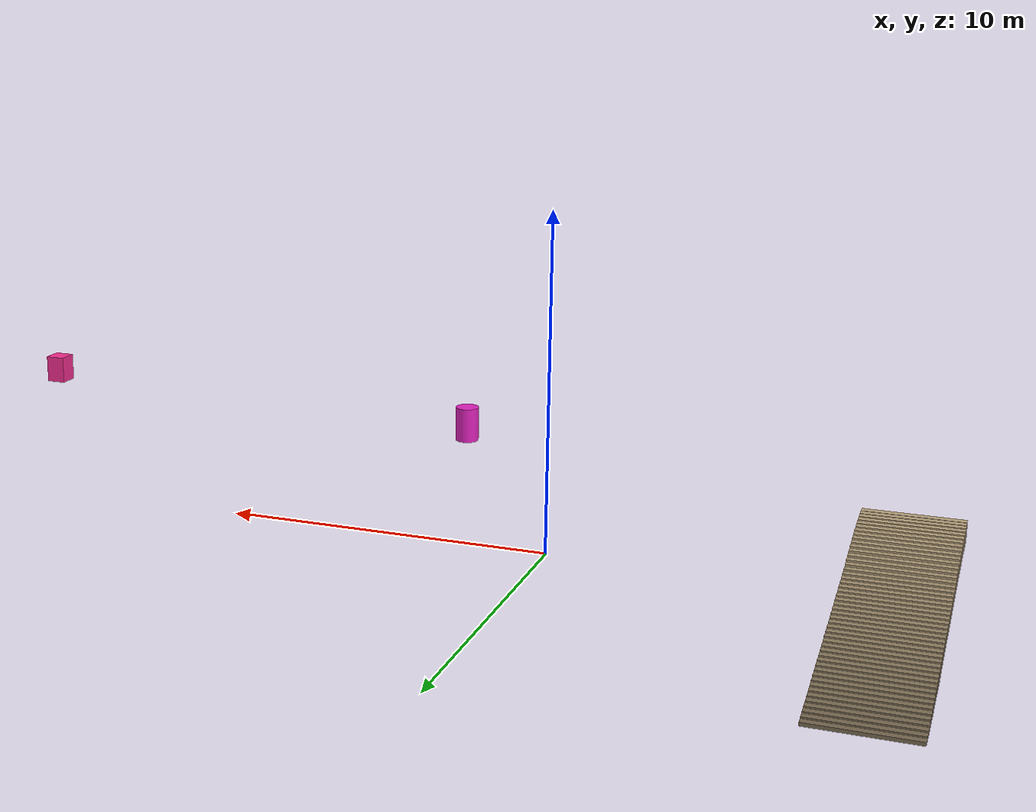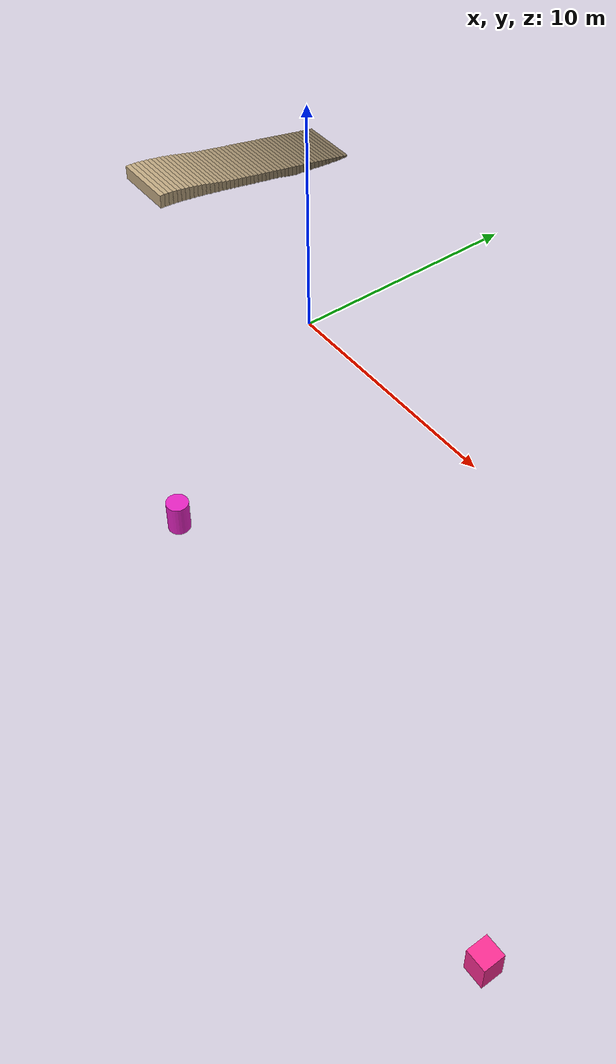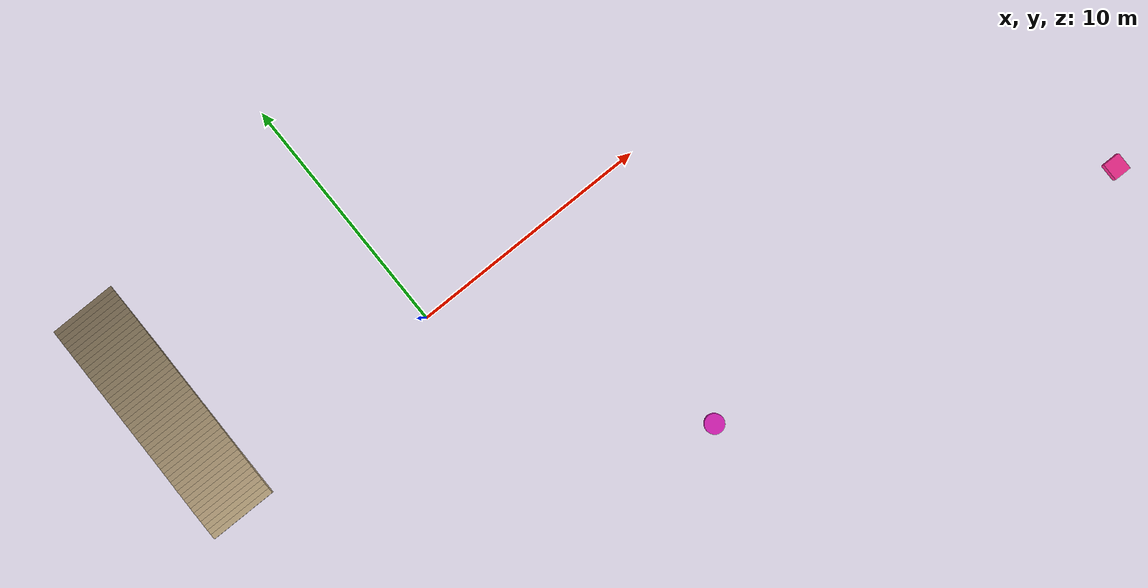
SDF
<sdf version="1.8">
 <world name="semantic_segmentation_world">
  <model name="staircase">
   <static>true</static>
   <link name="staircase_link">
    <collision name="step_01_collision">
     <pose>-10.000000 8.395833 0.044338 0.000000 0.000000 4.712389</pose>
     <geometry><box><size>0.223333 2.800000 0.100049</size></box></geometry>
     <surface><friction><ode><mu>1.2</mu><mu2>1.2</mu2></ode></friction></surface>
    </collision>
    <visual name="step_01_visual">
     <pose>-10.000000 8.395833 0.044338 0.000000 0.000000 4.712389</pose>
     <geometry><box><size>0.223333 2.800000 0.100049</size></box></geometry>
     <material>
      <ambient>0.34559999999999996 0.304128 0.235008 1.0</ambient>
      <diffuse>0.48 0.4224 0.3264 1.0</diffuse>
      <specular>0.04 0.04 0.04 1.0</specular>
     </material>
    </visual>
    <collision name="step_02_collision">
     <pose>-10.000000 8.187500 0.067010 0.000000 0.000000 4.712389</pose>
     <geometry><box><size>0.223333 2.800000 0.135588</size></box></geometry>
     <surface><friction><ode><mu>1.2</mu><mu2>1.2</mu2></ode></friction></surface>
    </collision>
    <visual name="step_02_visual">
     <pose>-10.000000 8.187500 0.067010 0.000000 0.000000 4.712389</pose>
     <geometry><box><size>0.223333 2.800000 0.135588</size></box></geometry>
     <material>
      <ambient>0.34991999999999995 0.30792959999999997 0.23794559999999998 1.0</ambient>
      <diffuse>0.486 0.42768 0.33048 1.0</diffuse>
      <specular>0.04 0.04 0.04 1.0</specular>
     </material>
    </visual>
    <collision name="step_03_collision">
     <pose>-10.000000 7.979167 0.090090 0.000000 0.000000 4.712389</pose>
     <geometry><box><size>0.223333 2.800000 0.170310</size></box></geometry>
     <surface><friction><ode><mu>1.2</mu><mu2>1.2</mu2></ode></friction></surface>
    </collision>
    <visual name="step_03_visual">
     <pose>-10.000000 7.979167 0.090090 0.000000 0.000000 4.712389</pose>
     <geometry><box><size>0.223333 2.800000 0.170310</size></box></geometry>
     <material>
      <ambient>0.35424 0.3117312 0.24088320000000002 1.0</ambient>
      <diffuse>0.492 0.43296 0.33456 1.0</diffuse>
      <specular>0.04 0.04 0.04 1.0</specular>
     </material>
    </visual>
    <collision name="step_04_collision">
     <pose>-10.000000 7.770833 0.115417 0.000000 0.000000 4.712389</pose>
     <geometry><box><size>0.223333 2.800000 0.200539</size></box></geometry>
     <surface><friction><ode><mu>1.2</mu><mu2>1.2</mu2></ode></friction></surface>
    </collision>
    <visual name="step_04_visual">
     <pose>-10.000000 7.770833 0.115417 0.000000 0.000000 4.712389</pose>
     <geometry><box><size>0.223333 2.800000 0.200539</size></box></geometry>
     <material>
      <ambient>0.35856 0.3155328 0.24382079999999998 1.0</ambient>
      <diffuse>0.498 0.43824 0.33864 1.0</diffuse>
      <specular>0.04 0.04 0.04 1.0</specular>
     </material>
    </visual>
    <collision name="step_05_collision">
     <pose>-10.000000 7.562500 0.140743 0.000000 0.000000 4.712389</pose>
     <geometry><box><size>0.223333 2.800000 0.230768</size></box></geometry>
     <surface><friction><ode><mu>1.2</mu><mu2>1.2</mu2></ode></friction></surface>
    </collision>
    <visual name="step_05_visual">
     <pose>-10.000000 7.562500 0.140743 0.000000 0.000000 4.712389</pose>
     <geometry><box><size>0.223333 2.800000 0.230768</size></box></geometry>
     <material>
      <ambient>0.36288 0.3193344 0.24675840000000002 1.0</ambient>
      <diffuse>0.504 0.44352 0.34272 1.0</diffuse>
      <specular>0.04 0.04 0.04 1.0</specular>
     </material>
    </visual>
    <collision name="step_06_collision">
     <pose>-10.000000 7.354167 0.169542 0.000000 0.000000 4.712389</pose>
     <geometry><box><size>0.223333 2.800000 0.254052</size></box></geometry>
     <surface><friction><ode><mu>1.2</mu><mu2>1.2</mu2></ode></friction></surface>
    </collision>
    <visual name="step_06_visual">
     <pose>-10.000000 7.354167 0.169542 0.000000 0.000000 4.712389</pose>
     <geometry><box><size>0.223333 2.800000 0.254052</size></box></geometry>
     <material>
      <ambient>0.36719999999999997 0.32313600000000003 0.24969600000000003 1.0</ambient>
      <diffuse>0.51 0.44880000000000003 0.34680000000000005 1.0</diffuse>
      <specular>0.04 0.04 0.04 1.0</specular>
     </material>
    </visual>
    <collision name="step_07_collision">
     <pose>-10.000000 7.145833 0.196299 0.000000 0.000000 4.712389</pose>
     <geometry><box><size>0.223333 2.800000 0.281422</size></box></geometry>
     <surface><friction><ode><mu>1.2</mu><mu2>1.2</mu2></ode></friction></surface>
    </collision>
    <visual name="step_07_visual">
     <pose>-10.000000 7.145833 0.196299 0.000000 0.000000 4.712389</pose>
     <geometry><box><size>0.223333 2.800000 0.281422</size></box></geometry>
     <material>
      <ambient>0.37152 0.3269376 0.2526336 1.0</ambient>
      <diffuse>0.516 0.45408000000000004 0.35088 1.0</diffuse>
      <specular>0.04 0.04 0.04 1.0</specular>
     </material>
    </visual>
    <collision name="step_08_collision">
     <pose>-10.000000 6.937500 0.225507 0.000000 0.000000 4.712389</pose>
     <geometry><box><size>0.223333 2.800000 0.303889</size></box></geometry>
     <surface><friction><ode><mu>1.2</mu><mu2>1.2</mu2></ode></friction></surface>
    </collision>
    <visual name="step_08_visual">
     <pose>-10.000000 6.937500 0.225507 0.000000 0.000000 4.712389</pose>
     <geometry><box><size>0.223333 2.800000 0.303889</size></box></geometry>
     <material>
      <ambient>0.37584 0.3307392 0.25557120000000005 1.0</ambient>
      <diffuse>0.522 0.45936000000000005 0.35496000000000005 1.0</diffuse>
      <specular>0.04 0.04 0.04 1.0</specular>
     </material>
    </visual>
    <collision name="step_09_collision">
     <pose>-10.000000 6.729167 0.260025 0.000000 0.000000 4.712389</pose>
     <geometry><box><size>0.223333 2.800000 0.315735</size></box></geometry>
     <surface><friction><ode><mu>1.2</mu><mu2>1.2</mu2></ode></friction></surface>
    </collision>
    <visual name="step_09_visual">
     <pose>-10.000000 6.729167 0.260025 0.000000 0.000000 4.712389</pose>
     <geometry><box><size>0.223333 2.800000 0.315735</size></box></geometry>
     <material>
      <ambient>0.38016 0.33454079999999997 0.2585088 1.0</ambient>
      <diffuse>0.528 0.46464 0.35904 1.0</diffuse>
      <specular>0.04 0.04 0.04 1.0</specular>
     </material>
    </visual>
    <collision name="step_10_collision">
     <pose>-10.000000 6.520833 0.288313 0.000000 0.000000 4.712389</pose>
     <geometry><box><size>0.223333 2.800000 0.340041</size></box></geometry>
     <surface><friction><ode><mu>1.2</mu><mu2>1.2</mu2></ode></friction></surface>
    </collision>
    <visual name="step_10_visual">
     <pose>-10.000000 6.520833 0.288313 0.000000 0.000000 4.712389</pose>
     <geometry><box><size>0.223333 2.800000 0.340041</size></box></geometry>
     <material>
      <ambient>0.38448 0.3383424 0.2614464 1.0</ambient>
      <diffuse>0.534 0.46992 0.36312000000000005 1.0</diffuse>
      <specular>0.04 0.04 0.04 1.0</specular>
     </material>
    </visual>
    <collision name="step_11_collision">
     <pose>-10.000000 6.312500 0.318440 0.000000 0.000000 4.712389</pose>
     <geometry><box><size>0.223333 2.800000 0.360670</size></box></geometry>
     <surface><friction><ode><mu>1.2</mu><mu2>1.2</mu2></ode></friction></surface>
    </collision>
    <visual name="step_11_visual">
     <pose>-10.000000 6.312500 0.318440 0.000000 0.000000 4.712389</pose>
     <geometry><box><size>0.223333 2.800000 0.360670</size></box></geometry>
     <material>
      <ambient>0.38880000000000003 0.342144 0.264384 1.0</ambient>
      <diffuse>0.54 0.4752 0.3672 1.0</diffuse>
      <specular>0.04 0.04 0.04 1.0</specular>
     </material>
    </visual>
    <collision name="step_12_collision">
     <pose>-10.000000 6.104167 0.347851 0.000000 0.000000 4.712389</pose>
     <geometry><box><size>0.223333 2.800000 0.382729</size></box></geometry>
     <surface><friction><ode><mu>1.2</mu><mu2>1.2</mu2></ode></friction></surface>
    </collision>
    <visual name="step_12_visual">
     <pose>-10.000000 6.104167 0.347851 0.000000 0.000000 4.712389</pose>
     <geometry><box><size>0.223333 2.800000 0.382729</size></box></geometry>
     <material>
      <ambient>0.39312 0.3459456 0.26732160000000005 1.0</ambient>
      <diffuse>0.546 0.48048 0.37128000000000005 1.0</diffuse>
      <specular>0.04 0.04 0.04 1.0</specular>
     </material>
    </visual>
    <collision name="step_13_collision">
     <pose>-10.000000 5.895833 0.377672 0.000000 0.000000 4.712389</pose>
     <geometry><box><size>0.223333 2.800000 0.403971</size></box></geometry>
     <surface><friction><ode><mu>1.2</mu><mu2>1.2</mu2></ode></friction></surface>
    </collision>
    <visual name="step_13_visual">
     <pose>-10.000000 5.895833 0.377672 0.000000 0.000000 4.712389</pose>
     <geometry><box><size>0.223333 2.800000 0.403971</size></box></geometry>
     <material>
      <ambient>0.39744 0.3497472 0.27025920000000003 1.0</ambient>
      <diffuse>0.552 0.48576 0.3753600000000001 1.0</diffuse>
      <specular>0.04 0.04 0.04 1.0</specular>
     </material>
    </visual>
    <collision name="step_14_collision">
     <pose>-10.000000 5.687500 0.403407 0.000000 0.000000 4.712389</pose>
     <geometry><box><size>0.223333 2.800000 0.433382</size></box></geometry>
     <surface><friction><ode><mu>1.2</mu><mu2>1.2</mu2></ode></friction></surface>
    </collision>
    <visual name="step_14_visual">
     <pose>-10.000000 5.687500 0.403407 0.000000 0.000000 4.712389</pose>
     <geometry><box><size>0.223333 2.800000 0.433382</size></box></geometry>
     <material>
      <ambient>0.40175999999999995 0.3535488 0.27319679999999996 1.0</ambient>
      <diffuse>0.5579999999999999 0.49104 0.37944 1.0</diffuse>
      <specular>0.04 0.04 0.04 1.0</specular>
     </material>
    </visual>
    <collision name="step_15_collision">
     <pose>-10.000000 5.479167 0.439355 0.000000 0.000000 4.712389</pose>
     <geometry><box><size>0.223333 2.800000 0.442369</size></box></geometry>
     <surface><friction><ode><mu>1.2</mu><mu2>1.2</mu2></ode></friction></surface>
    </collision>
    <visual name="step_15_visual">
     <pose>-10.000000 5.479167 0.439355 0.000000 0.000000 4.712389</pose>
     <geometry><box><size>0.223333 2.800000 0.442369</size></box></geometry>
     <material>
      <ambient>0.40607999999999994 0.35735039999999996 0.27613439999999995 1.0</ambient>
      <diffuse>0.564 0.49631999999999993 0.38351999999999997 1.0</diffuse>
      <specular>0.04 0.04 0.04 1.0</specular>
     </material>
    </visual>
    <collision name="step_16_collision">
     <pose>-10.000000 5.270833 0.481225 0.000000 0.000000 4.712389</pose>
     <geometry><box><size>0.223333 2.800000 0.439510</size></box></geometry>
     <surface><friction><ode><mu>1.2</mu><mu2>1.2</mu2></ode></friction></surface>
    </collision>
    <visual name="step_16_visual">
     <pose>-10.000000 5.270833 0.481225 0.000000 0.000000 4.712389</pose>
     <geometry><box><size>0.223333 2.800000 0.439510</size></box></geometry>
     <material>
      <ambient>0.41039999999999993 0.3611519999999999 0.279072 1.0</ambient>
      <diffuse>0.57 0.5015999999999999 0.3876 1.0</diffuse>
      <specular>0.04 0.04 0.04 1.0</specular>
     </material>
    </visual>
    <collision name="step_17_collision">
     <pose>-10.000000 5.062500 0.531266 0.000000 0.000000 4.712389</pose>
     <geometry><box><size>0.223333 2.800000 0.420310</size></box></geometry>
     <surface><friction><ode><mu>1.2</mu><mu2>1.2</mu2></ode></friction></surface>
    </collision>
    <visual name="step_17_visual">
     <pose>-10.000000 5.062500 0.531266 0.000000 0.000000 4.712389</pose>
     <geometry><box><size>0.223333 2.800000 0.420310</size></box></geometry>
     <material>
      <ambient>0.41472 0.3649536 0.28200959999999997 1.0</ambient>
      <diffuse>0.576 0.50688 0.39168 1.0</diffuse>
      <specular>0.04 0.04 0.04 1.0</specular>
     </material>
    </visual>
    <collision name="step_18_collision">
     <pose>-10.000000 4.854167 0.578039 0.000000 0.000000 4.712389</pose>
     <geometry><box><size>0.223333 2.800000 0.407647</size></box></geometry>
     <surface><friction><ode><mu>1.2</mu><mu2>1.2</mu2></ode></friction></surface>
    </collision>
    <visual name="step_18_visual">
     <pose>-10.000000 4.854167 0.578039 0.000000 0.000000 4.712389</pose>
     <geometry><box><size>0.223333 2.800000 0.407647</size></box></geometry>
     <material>
      <ambient>0.41903999999999997 0.36875519999999995 0.2849472 1.0</ambient>
      <diffuse>0.582 0.51216 0.39576 1.0</diffuse>
      <specular>0.04 0.04 0.04 1.0</specular>
     </material>
    </visual>
    <collision name="step_19_collision">
     <pose>-10.000000 4.645833 0.625221 0.000000 0.000000 4.712389</pose>
     <geometry><box><size>0.223333 2.800000 0.394167</size></box></geometry>
     <surface><friction><ode><mu>1.2</mu><mu2>1.2</mu2></ode></friction></surface>
    </collision>
    <visual name="step_19_visual">
     <pose>-10.000000 4.645833 0.625221 0.000000 0.000000 4.712389</pose>
     <geometry><box><size>0.223333 2.800000 0.394167</size></box></geometry>
     <material>
      <ambient>0.42335999999999996 0.3725568 0.2878848 1.0</ambient>
      <diffuse>0.588 0.51744 0.39984000000000003 1.0</diffuse>
      <specular>0.04 0.04 0.04 1.0</specular>
     </material>
    </visual>
    <collision name="step_20_collision">
     <pose>-10.000000 4.437500 0.662190 0.000000 0.000000 4.712389</pose>
     <geometry><box><size>0.223333 2.800000 0.401111</size></box></geometry>
     <surface><friction><ode><mu>1.2</mu><mu2>1.2</mu2></ode></friction></surface>
    </collision>
    <visual name="step_20_visual">
     <pose>-10.000000 4.437500 0.662190 0.000000 0.000000 4.712389</pose>
     <geometry><box><size>0.223333 2.800000 0.401111</size></box></geometry>
     <material>
      <ambient>0.42767999999999995 0.3763584 0.2908224 1.0</ambient>
      <diffuse>0.594 0.52272 0.40392 1.0</diffuse>
      <specular>0.04 0.04 0.04 1.0</specular>
     </material>
    </visual>
    <collision name="step_21_collision">
     <pose>-10.000000 4.229167 0.701201 0.000000 0.000000 4.712389</pose>
     <geometry><box><size>0.223333 2.800000 0.403971</size></box></geometry>
     <surface><friction><ode><mu>1.2</mu><mu2>1.2</mu2></ode></friction></surface>
    </collision>
    <visual name="step_21_visual">
     <pose>-10.000000 4.229167 0.701201 0.000000 0.000000 4.712389</pose>
     <geometry><box><size>0.223333 2.800000 0.403971</size></box></geometry>
     <material>
      <ambient>0.432 0.38016 0.29376 1.0</ambient>
      <diffuse>0.6 0.528 0.40800000000000003 1.0</diffuse>
      <specular>0.04 0.04 0.04 1.0</specular>
     </material>
    </visual>
    <collision name="step_22_collision">
     <pose>-10.000000 4.020833 0.738578 0.000000 0.000000 4.712389</pose>
     <geometry><box><size>0.223333 2.800000 0.410098</size></box></geometry>
     <surface><friction><ode><mu>1.2</mu><mu2>1.2</mu2></ode></friction></surface>
    </collision>
    <visual name="step_22_visual">
     <pose>-10.000000 4.020833 0.738578 0.000000 0.000000 4.712389</pose>
     <geometry><box><size>0.223333 2.800000 0.410098</size></box></geometry>
     <material>
      <ambient>0.43632 0.38396159999999996 0.2966976 1.0</ambient>
      <diffuse>0.606 0.53328 0.41208 1.0</diffuse>
      <specular>0.04 0.04 0.04 1.0</specular>
     </material>
    </visual>
    <collision name="step_23_collision">
     <pose>-10.000000 3.812500 0.779224 0.000000 0.000000 4.712389</pose>
     <geometry><box><size>0.223333 2.800000 0.409690</size></box></geometry>
     <surface><friction><ode><mu>1.2</mu><mu2>1.2</mu2></ode></friction></surface>
    </collision>
    <visual name="step_23_visual">
     <pose>-10.000000 3.812500 0.779224 0.000000 0.000000 4.712389</pose>
     <geometry><box><size>0.223333 2.800000 0.409690</size></box></geometry>
     <material>
      <ambient>0.44064 0.38776320000000003 0.2996352 1.0</ambient>
      <diffuse>0.612 0.53856 0.41616000000000003 1.0</diffuse>
      <specular>0.04 0.04 0.04 1.0</specular>
     </material>
    </visual>
    <collision name="step_24_collision">
     <pose>-10.000000 3.604167 0.819869 0.000000 0.000000 4.712389</pose>
     <geometry><box><size>0.223333 2.800000 0.409281</size></box></geometry>
     <surface><friction><ode><mu>1.2</mu><mu2>1.2</mu2></ode></friction></surface>
    </collision>
    <visual name="step_24_visual">
     <pose>-10.000000 3.604167 0.819869 0.000000 0.000000 4.712389</pose>
     <geometry><box><size>0.223333 2.800000 0.409281</size></box></geometry>
     <material>
      <ambient>0.44495999999999997 0.3915648 0.3025728 1.0</ambient>
      <diffuse>0.618 0.54384 0.42024 1.0</diffuse>
      <specular>0.04 0.04 0.04 1.0</specular>
     </material>
    </visual>
    <collision name="step_25_collision">
     <pose>-10.000000 3.395833 0.858064 0.000000 0.000000 4.712389</pose>
     <geometry><box><size>0.223333 2.800000 0.413775</size></box></geometry>
     <surface><friction><ode><mu>1.2</mu><mu2>1.2</mu2></ode></friction></surface>
    </collision>
    <visual name="step_25_visual">
     <pose>-10.000000 3.395833 0.858064 0.000000 0.000000 4.712389</pose>
     <geometry><box><size>0.223333 2.800000 0.413775</size></box></geometry>
     <material>
      <ambient>0.44927999999999996 0.3953664 0.3055104 1.0</ambient>
      <diffuse>0.624 0.54912 0.42432000000000003 1.0</diffuse>
      <specular>0.04 0.04 0.04 1.0</specular>
     </material>
    </visual>
    <collision name="step_26_collision">
     <pose>-10.000000 3.187500 0.896258 0.000000 0.000000 4.712389</pose>
     <geometry><box><size>0.223333 2.800000 0.418268</size></box></geometry>
     <surface><friction><ode><mu>1.2</mu><mu2>1.2</mu2></ode></friction></surface>
    </collision>
    <visual name="step_26_visual">
     <pose>-10.000000 3.187500 0.896258 0.000000 0.000000 4.712389</pose>
     <geometry><box><size>0.223333 2.800000 0.418268</size></box></geometry>
     <material>
      <ambient>0.4536 0.39916799999999997 0.30844800000000006 1.0</ambient>
      <diffuse>0.63 0.5544 0.42840000000000006 1.0</diffuse>
      <specular>0.04 0.04 0.04 1.0</specular>
     </material>
    </visual>
    <collision name="step_27_collision">
     <pose>-10.000000 2.979167 0.936904 0.000000 0.000000 4.712389</pose>
     <geometry><box><size>0.223333 2.800000 0.417859</size></box></geometry>
     <surface><friction><ode><mu>1.2</mu><mu2>1.2</mu2></ode></friction></surface>
    </collision>
    <visual name="step_27_visual">
     <pose>-10.000000 2.979167 0.936904 0.000000 0.000000 4.712389</pose>
     <geometry><box><size>0.223333 2.800000 0.417859</size></box></geometry>
     <material>
      <ambient>0.45792 0.40296960000000004 0.3113856 1.0</ambient>
      <diffuse>0.636 0.5596800000000001 0.43248000000000003 1.0</diffuse>
      <specular>0.04 0.04 0.04 1.0</specular>
     </material>
    </visual>
    <collision name="step_28_collision">
     <pose>-10.000000 2.770833 0.977549 0.000000 0.000000 4.712389</pose>
     <geometry><box><size>0.223333 2.800000 0.417451</size></box></geometry>
     <surface><friction><ode><mu>1.2</mu><mu2>1.2</mu2></ode></friction></surface>
    </collision>
    <visual name="step_28_visual">
     <pose>-10.000000 2.770833 0.977549 0.000000 0.000000 4.712389</pose>
     <geometry><box><size>0.223333 2.800000 0.417451</size></box></geometry>
     <material>
      <ambient>0.46224 0.4067712 0.3143232 1.0</ambient>
      <diffuse>0.642 0.56496 0.43656000000000006 1.0</diffuse>
      <specular>0.04 0.04 0.04 1.0</specular>
     </material>
    </visual>
    <collision name="step_29_collision">
     <pose>-10.000000 2.562500 1.018194 0.000000 0.000000 4.712389</pose>
     <geometry><box><size>0.223333 2.800000 0.417042</size></box></geometry>
     <surface><friction><ode><mu>1.2</mu><mu2>1.2</mu2></ode></friction></surface>
    </collision>
    <visual name="step_29_visual">
     <pose>-10.000000 2.562500 1.018194 0.000000 0.000000 4.712389</pose>
     <geometry><box><size>0.223333 2.800000 0.417042</size></box></geometry>
     <material>
      <ambient>0.46656 0.41057279999999996 0.3172608 1.0</ambient>
      <diffuse>0.648 0.57024 0.44064000000000003 1.0</diffuse>
      <specular>0.04 0.04 0.04 1.0</specular>
     </material>
    </visual>
    <collision name="step_30_collision">
     <pose>-10.000000 2.354167 1.058840 0.000000 0.000000 4.712389</pose>
     <geometry><box><size>0.223333 2.800000 0.416634</size></box></geometry>
     <surface><friction><ode><mu>1.2</mu><mu2>1.2</mu2></ode></friction></surface>
    </collision>
    <visual name="step_30_visual">
     <pose>-10.000000 2.354167 1.058840 0.000000 0.000000 4.712389</pose>
     <geometry><box><size>0.223333 2.800000 0.416634</size></box></geometry>
     <material>
      <ambient>0.47088 0.41437440000000003 0.32019840000000005 1.0</ambient>
      <diffuse>0.654 0.57552 0.44472000000000006 1.0</diffuse>
      <specular>0.04 0.04 0.04 1.0</specular>
     </material>
    </visual>
    <collision name="step_31_collision">
     <pose>-10.000000 2.145833 1.095809 0.000000 0.000000 4.712389</pose>
     <geometry><box><size>0.223333 2.800000 0.423578</size></box></geometry>
     <surface><friction><ode><mu>1.2</mu><mu2>1.2</mu2></ode></friction></surface>
    </collision>
    <visual name="step_31_visual">
     <pose>-10.000000 2.145833 1.095809 0.000000 0.000000 4.712389</pose>
     <geometry><box><size>0.223333 2.800000 0.423578</size></box></geometry>
     <material>
      <ambient>0.4751999999999999 0.418176 0.323136 1.0</ambient>
      <diffuse>0.6599999999999999 0.5808 0.4488 1.0</diffuse>
      <specular>0.04 0.04 0.04 1.0</specular>
     </material>
    </visual>
    <collision name="step_32_collision">
     <pose>-10.000000 1.937500 1.137595 0.000000 0.000000 4.712389</pose>
     <geometry><box><size>0.223333 2.800000 0.430353</size></box></geometry>
     <surface><friction><ode><mu>1.2</mu><mu2>1.2</mu2></ode></friction></surface>
    </collision>
    <visual name="step_32_visual">
     <pose>-10.000000 1.937500 1.137595 0.000000 0.000000 4.712389</pose>
     <geometry><box><size>0.223333 2.800000 0.430353</size></box></geometry>
     <material>
      <ambient>0.47951999999999995 0.42197759999999995 0.3260736 1.0</ambient>
      <diffuse>0.6659999999999999 0.5860799999999999 0.45288 1.0</diffuse>
      <specular>0.04 0.04 0.04 1.0</specular>
     </material>
    </visual>
    <collision name="step_33_collision">
     <pose>-10.000000 1.729167 1.183551 0.000000 0.000000 4.712389</pose>
     <geometry><box><size>0.223333 2.800000 0.440565</size></box></geometry>
     <surface><friction><ode><mu>1.2</mu><mu2>1.2</mu2></ode></friction></surface>
    </collision>
    <visual name="step_33_visual">
     <pose>-10.000000 1.729167 1.183551 0.000000 0.000000 4.712389</pose>
     <geometry><box><size>0.223333 2.800000 0.440565</size></box></geometry>
     <material>
      <ambient>0.48383999999999994 0.42577919999999997 0.32901119999999995 1.0</ambient>
      <diffuse>0.6719999999999999 0.59136 0.45696 1.0</diffuse>
      <specular>0.04 0.04 0.04 1.0</specular>
     </material>
    </visual>
    <collision name="step_34_collision">
     <pose>-10.000000 1.520833 1.229711 0.000000 0.000000 4.712389</pose>
     <geometry><box><size>0.223333 2.800000 0.468343</size></box></geometry>
     <surface><friction><ode><mu>1.2</mu><mu2>1.2</mu2></ode></friction></surface>
    </collision>
    <visual name="step_34_visual">
     <pose>-10.000000 1.520833 1.229711 0.000000 0.000000 4.712389</pose>
     <geometry><box><size>0.223333 2.800000 0.468343</size></box></geometry>
     <material>
      <ambient>0.4881599999999999 0.42958079999999993 0.3319488 1.0</ambient>
      <diffuse>0.6779999999999999 0.59664 0.46104 1.0</diffuse>
      <specular>0.04 0.04 0.04 1.0</specular>
     </material>
    </visual>
    <collision name="step_35_collision">
     <pose>-10.000000 1.312500 1.275462 0.000000 0.000000 4.712389</pose>
     <geometry><box><size>0.223333 2.800000 0.480598</size></box></geometry>
     <surface><friction><ode><mu>1.2</mu><mu2>1.2</mu2></ode></friction></surface>
    </collision>
    <visual name="step_35_visual">
     <pose>-10.000000 1.312500 1.275462 0.000000 0.000000 4.712389</pose>
     <geometry><box><size>0.223333 2.800000 0.480598</size></box></geometry>
     <material>
      <ambient>0.4924799999999999 0.4333823999999999 0.3348864 1.0</ambient>
      <diffuse>0.6839999999999999 0.6019199999999999 0.46512 1.0</diffuse>
      <specular>0.04 0.04 0.04 1.0</specular>
     </material>
    </visual>
    <collision name="step_36_collision">
     <pose>-10.000000 1.104167 1.316721 0.000000 0.000000 4.712389</pose>
     <geometry><box><size>0.223333 2.800000 0.500206</size></box></geometry>
     <surface><friction><ode><mu>1.2</mu><mu2>1.2</mu2></ode></friction></surface>
    </collision>
    <visual name="step_36_visual">
     <pose>-10.000000 1.104167 1.316721 0.000000 0.000000 4.712389</pose>
     <geometry><box><size>0.223333 2.800000 0.500206</size></box></geometry>
     <material>
      <ambient>0.49679999999999996 0.43718399999999996 0.337824 1.0</ambient>
      <diffuse>0.69 0.6072 0.4692 1.0</diffuse>
      <specular>0.04 0.04 0.04 1.0</specular>
     </material>
    </visual>
    <collision name="step_37_collision">
     <pose>-10.000000 0.895833 1.367374 0.000000 0.000000 4.712389</pose>
     <geometry><box><size>0.223333 2.800000 0.520631</size></box></geometry>
     <surface><friction><ode><mu>1.2</mu><mu2>1.2</mu2></ode></friction></surface>
    </collision>
    <visual name="step_37_visual">
     <pose>-10.000000 0.895833 1.367374 0.000000 0.000000 4.712389</pose>
     <geometry><box><size>0.223333 2.800000 0.520631</size></box></geometry>
     <material>
      <ambient>0.5011199999999999 0.4409855999999999 0.3407616 1.0</ambient>
      <diffuse>0.696 0.6124799999999999 0.47328 1.0</diffuse>
      <specular>0.04 0.04 0.04 1.0</specular>
     </material>
    </visual>
    <collision name="step_38_collision">
     <pose>-10.000000 0.687500 1.407815 0.000000 0.000000 4.712389</pose>
     <geometry><box><size>0.223333 2.800000 0.540239</size></box></geometry>
     <surface><friction><ode><mu>1.2</mu><mu2>1.2</mu2></ode></friction></surface>
    </collision>
    <visual name="step_38_visual">
     <pose>-10.000000 0.687500 1.407815 0.000000 0.000000 4.712389</pose>
     <geometry><box><size>0.223333 2.800000 0.540239</size></box></geometry>
     <material>
      <ambient>0.50544 0.4447872 0.3436992 1.0</ambient>
      <diffuse>0.702 0.61776 0.47736 1.0</diffuse>
      <specular>0.04 0.04 0.04 1.0</specular>
     </material>
    </visual>
    <collision name="step_39_collision">
     <pose>-10.000000 0.479167 1.444172 0.000000 0.000000 4.712389</pose>
     <geometry><box><size>0.223333 2.800000 0.551676</size></box></geometry>
     <surface><friction><ode><mu>1.2</mu><mu2>1.2</mu2></ode></friction></surface>
    </collision>
    <visual name="step_39_visual">
     <pose>-10.000000 0.479167 1.444172 0.000000 0.000000 4.712389</pose>
     <geometry><box><size>0.223333 2.800000 0.551676</size></box></geometry>
     <material>
      <ambient>0.50976 0.44858879999999995 0.3466368 1.0</ambient>
      <diffuse>0.708 0.6230399999999999 0.48144000000000003 1.0</diffuse>
      <specular>0.04 0.04 0.04 1.0</specular>
     </material>
    </visual>
    <collision name="step_40_collision">
     <pose>-10.000000 0.270833 1.484204 0.000000 0.000000 4.712389</pose>
     <geometry><box><size>0.223333 2.800000 0.570467</size></box></geometry>
     <surface><friction><ode><mu>1.2</mu><mu2>1.2</mu2></ode></friction></surface>
    </collision>
    <visual name="step_40_visual">
     <pose>-10.000000 0.270833 1.484204 0.000000 0.000000 4.712389</pose>
     <geometry><box><size>0.223333 2.800000 0.570467</size></box></geometry>
     <material>
      <ambient>0.51408 0.45239039999999997 0.3495744 1.0</ambient>
      <diffuse>0.714 0.62832 0.48552 1.0</diffuse>
      <specular>0.04 0.04 0.04 1.0</specular>
     </material>
    </visual>
    <collision name="step_41_collision">
     <pose>-10.000000 0.062500 1.519948 0.000000 0.000000 4.712389</pose>
     <geometry><box><size>0.223333 2.800000 0.580680</size></box></geometry>
     <surface><friction><ode><mu>1.2</mu><mu2>1.2</mu2></ode></friction></surface>
    </collision>
    <visual name="step_41_visual">
     <pose>-10.000000 0.062500 1.519948 0.000000 0.000000 4.712389</pose>
     <geometry><box><size>0.223333 2.800000 0.580680</size></box></geometry>
     <material>
      <ambient>0.5184 0.45619199999999993 0.352512 1.0</ambient>
      <diffuse>0.72 0.6335999999999999 0.48960000000000004 1.0</diffuse>
      <specular>0.04 0.04 0.04 1.0</specular>
     </material>
    </visual>
    <collision name="step_42_collision">
     <pose>-10.000000 -0.145833 1.555691 0.000000 0.000000 4.712389</pose>
     <geometry><box><size>0.223333 2.800000 0.590892</size></box></geometry>
     <surface><friction><ode><mu>1.2</mu><mu2>1.2</mu2></ode></friction></surface>
    </collision>
    <visual name="step_42_visual">
     <pose>-10.000000 -0.145833 1.555691 0.000000 0.000000 4.712389</pose>
     <geometry><box><size>0.223333 2.800000 0.590892</size></box></geometry>
     <material>
      <ambient>0.52272 0.4599936 0.3554496 1.0</ambient>
      <diffuse>0.726 0.63888 0.49368 1.0</diffuse>
      <specular>0.04 0.04 0.04 1.0</specular>
     </material>
    </visual>
    <collision name="step_43_collision">
     <pose>-10.000000 -0.354167 1.588779 0.000000 0.000000 4.712389</pose>
     <geometry><box><size>0.223333 2.800000 0.600696</size></box></geometry>
     <surface><friction><ode><mu>1.2</mu><mu2>1.2</mu2></ode></friction></surface>
    </collision>
    <visual name="step_43_visual">
     <pose>-10.000000 -0.354167 1.588779 0.000000 0.000000 4.712389</pose>
     <geometry><box><size>0.223333 2.800000 0.600696</size></box></geometry>
     <material>
      <ambient>0.52704 0.46379519999999996 0.3583872 1.0</ambient>
      <diffuse>0.732 0.64416 0.49776000000000004 1.0</diffuse>
      <specular>0.04 0.04 0.04 1.0</specular>
     </material>
    </visual>
    <collision name="step_44_collision">
     <pose>-10.000000 -0.562500 1.614310 0.000000 0.000000 4.712389</pose>
     <geometry><box><size>0.223333 2.800000 0.610908</size></box></geometry>
     <surface><friction><ode><mu>1.2</mu><mu2>1.2</mu2></ode></friction></surface>
    </collision>
    <visual name="step_44_visual">
     <pose>-10.000000 -0.562500 1.614310 0.000000 0.000000 4.712389</pose>
     <geometry><box><size>0.223333 2.800000 0.610908</size></box></geometry>
     <material>
      <ambient>0.5313599999999999 0.4675968 0.36132480000000006 1.0</ambient>
      <diffuse>0.738 0.64944 0.5018400000000001 1.0</diffuse>
      <specular>0.04 0.04 0.04 1.0</specular>
     </material>
    </visual>
    <collision name="step_45_collision">
     <pose>-10.000000 -0.770833 1.639842 0.000000 0.000000 4.712389</pose>
     <geometry><box><size>0.223333 2.800000 0.621121</size></box></geometry>
     <surface><friction><ode><mu>1.2</mu><mu2>1.2</mu2></ode></friction></surface>
    </collision>
    <visual name="step_45_visual">
     <pose>-10.000000 -0.770833 1.639842 0.000000 0.000000 4.712389</pose>
     <geometry><box><size>0.223333 2.800000 0.621121</size></box></geometry>
     <material>
      <ambient>0.5356799999999999 0.47139839999999994 0.3642624 1.0</ambient>
      <diffuse>0.744 0.65472 0.50592 1.0</diffuse>
      <specular>0.04 0.04 0.04 1.0</specular>
     </material>
    </visual>
    <collision name="step_46_collision">
     <pose>-10.000000 -0.979167 1.661492 0.000000 0.000000 4.712389</pose>
     <geometry><box><size>0.223333 2.800000 0.630925</size></box></geometry>
     <surface><friction><ode><mu>1.2</mu><mu2>1.2</mu2></ode></friction></surface>
    </collision>
    <visual name="step_46_visual">
     <pose>-10.000000 -0.979167 1.661492 0.000000 0.000000 4.712389</pose>
     <geometry><box><size>0.223333 2.800000 0.630925</size></box></geometry>
     <material>
      <ambient>0.54 0.4752 0.36719999999999997 1.0</ambient>
      <diffuse>0.75 0.66 0.51 1.0</diffuse>
      <specular>0.04 0.04 0.04 1.0</specular>
     </material>
    </visual>
    <collision name="step_47_collision">
     <pose>-10.000000 -1.187500 1.674564 0.000000 0.000000 4.712389</pose>
     <geometry><box><size>0.223333 2.800000 0.636644</size></box></geometry>
     <surface><friction><ode><mu>1.2</mu><mu2>1.2</mu2></ode></friction></surface>
    </collision>
    <visual name="step_47_visual">
     <pose>-10.000000 -1.187500 1.674564 0.000000 0.000000 4.712389</pose>
     <geometry><box><size>0.223333 2.800000 0.636644</size></box></geometry>
     <material>
      <ambient>0.54432 0.47900159999999997 0.37013760000000007 1.0</ambient>
      <diffuse>0.756 0.66528 0.5140800000000001 1.0</diffuse>
      <specular>0.04 0.04 0.04 1.0</specular>
     </material>
    </visual>
    <collision name="step_48_collision">
     <pose>-10.000000 -1.395833 1.684776 0.000000 0.000000 4.712389</pose>
     <geometry><box><size>0.223333 2.800000 0.636644</size></box></geometry>
     <surface><friction><ode><mu>1.2</mu><mu2>1.2</mu2></ode></friction></surface>
    </collision>
    <visual name="step_48_visual">
     <pose>-10.000000 -1.395833 1.684776 0.000000 0.000000 4.712389</pose>
     <geometry><box><size>0.223333 2.800000 0.636644</size></box></geometry>
     <material>
      <ambient>0.54864 0.4828032 0.37307520000000005 1.0</ambient>
      <diffuse>0.762 0.67056 0.5181600000000001 1.0</diffuse>
      <specular>0.04 0.04 0.04 1.0</specular>
     </material>
    </visual>
   </link>
   <plugin filename="ignition-gazebo-label-system" name="ignition::gazebo::systems::Label">
    <label>7</label>
   </plugin>
  </model>
  <model name="dynamic_east_box">
   <static>true</static>
   <pose>24.000000 -12.000000 0.520000 0.000000 0.000000 0.000000</pose>
   <link name="body">
    <collision name="body_collision">
     <geometry><box><size>0.720000 0.720000 1.000000</size></box></geometry>
     <surface><friction><ode><mu>1.1</mu><mu2>1.1</mu2></ode></friction></surface>
    </collision>
    <visual name="body_visual">
     <geometry><box><size>0.720000 0.720000 1.000000</size></box></geometry>
     <material>
      <ambient>0.98 0.18 0.58 1.0</ambient>
      <diffuse>0.98 0.18 0.58 1.0</diffuse>
      <specular>0.04 0.04 0.04 1</specular>
     </material>
    </visual>
   </link>
   <plugin filename="ignition-gazebo-label-system" name="ignition::gazebo::systems::Label">
    <label>6</label>
   </plugin>
   <plugin filename="libssmi_periodic_motion_system.so" name="semantic_segmentation_husky::PeriodicMotionSystem">
    <offset>0.000000 14.000000 0.000000</offset>
    <period>32.000000</period>
    <phase>13.000000</phase>
   </plugin>
  </model>
  <model name="dynamic_southeast_cylinder">
   <static>true</static>
   <pose>6.000000 -10.000000 0.623632 0.000000 0.000000 0.000000</pose>
   <link name="body">
    <collision name="body_collision">
     <geometry><cylinder><radius>0.400000</radius><length>1.200000</length></cylinder></geometry>
     <surface><friction><ode><mu>1.1</mu><mu2>1.1</mu2></ode></friction></surface>
    </collision>
    <visual name="body_visual">
     <geometry><cylinder><radius>0.400000</radius><length>1.200000</length></cylinder></geometry>
     <material>
      <ambient>0.9 0.14 0.76 1.0</ambient>
      <diffuse>0.9 0.14 0.76 1.0</diffuse>
      <specular>0.04 0.04 0.04 1</specular>
     </material>
    </visual>
   </link>
   <plugin filename="ignition-gazebo-label-system" name="ignition::gazebo::systems::Label">
    <label>6</label>
   </plugin>
   <plugin filename="libssmi_periodic_motion_system.so" name="semantic_segmentation_husky::PeriodicMotionSystem">
    <offset>4.000000 0.000000 0.024216</offset>
    <period>20.000000</period>
    <phase>9.000000</phase>
   </plugin>
  </model>
 </world>
</sdf>
